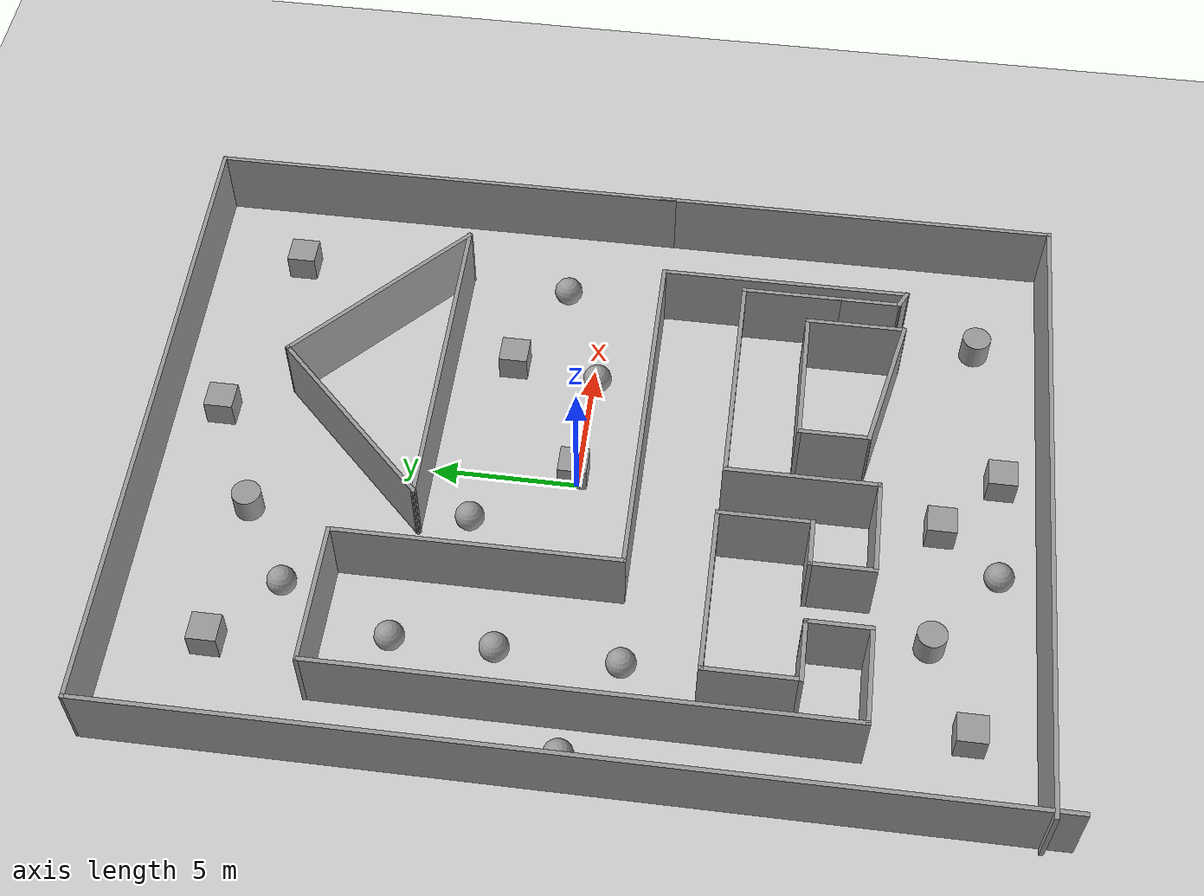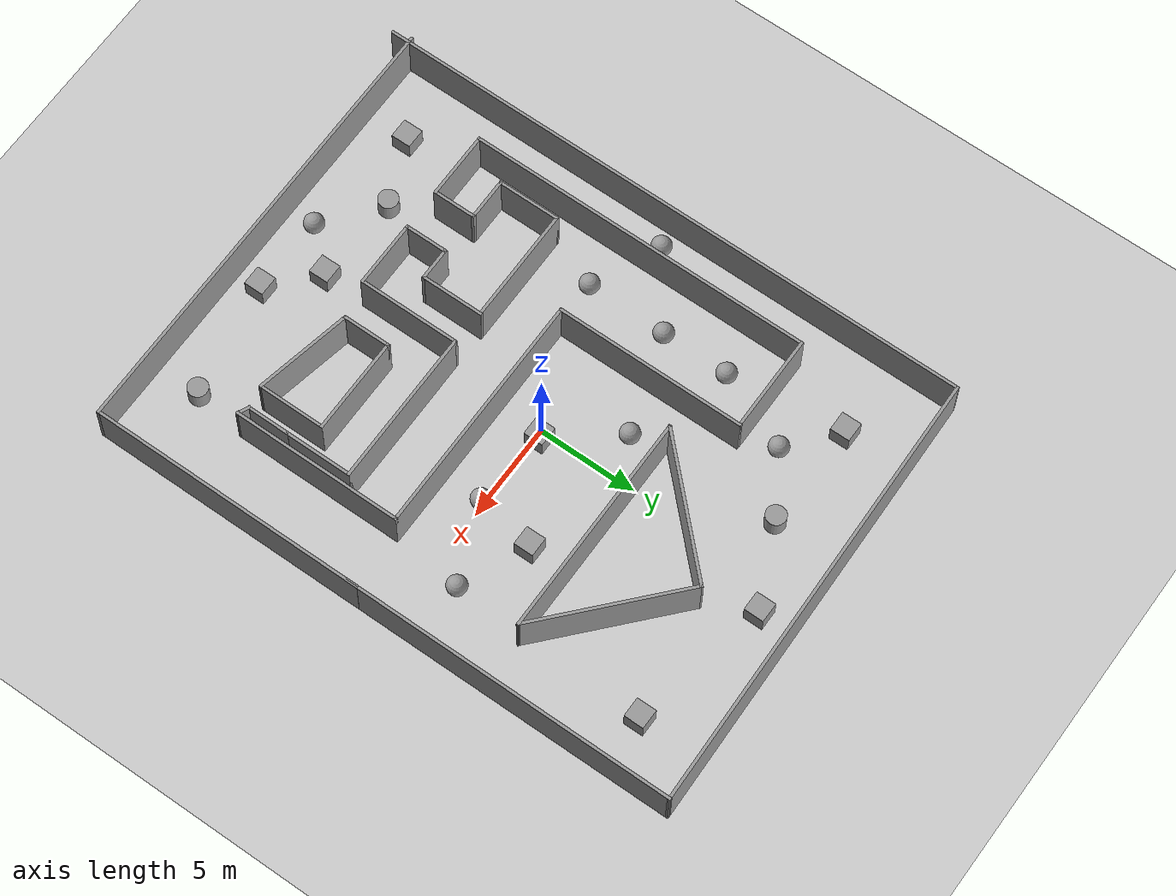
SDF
<sdf version="1.7">
 <world name="default">
  <light name="sun" type="directional">
   <pose>0 0 10 0 -0 0</pose>
   <diffuse>0.8 0.8 0.8 1</diffuse>
   <specular>0.2 0.2 0.2 1</specular>
   <attenuation>
    <range>1000</range>
    <constant>0.9</constant>
    <linear>0.01</linear>
    <quadratic>0.001</quadratic>
   </attenuation>
   <direction>-0.5 0.1 -0.9</direction>
   <spot><inner_angle>0</inner_angle><outer_angle>0</outer_angle><falloff>0</falloff></spot>
  </light>
  <model name="ground_plane">
   <static>1</static>
   <link name="link">
    <collision name="collision">
     <geometry><plane><normal>0 0 1</normal><size>100 100</size></plane></geometry>
     <surface><friction><ode><mu>100</mu><mu2>50</mu2></ode></friction></surface>
    </collision>
    <visual name="visual">
     <cast_shadows>0</cast_shadows>
     <geometry><plane><normal>0 0 1</normal><size>100 100</size></plane></geometry>
     <material>
      <script><uri>file://media/materials/scripts/gazebo.material</uri><name>Gazebo/Grey</name></script>
     </material>
    </visual>
   </link>
  </model>
  <gravity>0 0 -9.8</gravity>
  <magnetic_field>6e-06 2.3e-05 -4.2e-05</magnetic_field>
  <atmosphere type="adiabatic"/>
  <physics type="ode">
   <max_step_size>0.001</max_step_size>
   <real_time_factor>1</real_time_factor>
   <real_time_update_rate>1000</real_time_update_rate>
  </physics>
  <scene><ambient>0.4 0.4 0.4 1</ambient><background>0.7 0.7 0.7 1</background><shadows>1</shadows></scene>
  <spherical_coordinates>
   <surface_model>EARTH_WGS84</surface_model>
   <latitude_deg>0</latitude_deg>
   <longitude_deg>0</longitude_deg>
   <elevation>0</elevation>
   <heading_deg>0</heading_deg>
  </spherical_coordinates>
  <model name="Untitled">
   <pose>-0.105181 -0.907331 0 0 -0 0</pose>
   <link name="Wall_10">
    <collision name="Wall_10_Collision">
     <geometry><box><size>2.25 0.15 2.5</size></box></geometry>
     <pose>0 0 1.25 0 -0 0</pose>
    </collision>
    <visual name="Wall_10_Visual">
     <pose>0 0 1.25 0 -0 0</pose>
     <geometry><box><size>2.25 0.15 2.5</size></box></geometry>
     <material>
      <script><uri>file://media/materials/scripts/gazebo.material</uri><name>Gazebo/Grey</name></script>
      <ambient>1 1 1 1</ambient>
     </material>
     <meta><layer>0</layer></meta>
    </visual>
    <pose>-5.80283 -8.13717 0 0 -0 1.5708</pose>
   </link>
   <link name="Wall_11">
    <collision name="Wall_11_Collision">
     <geometry><box><size>2.25 0.15 2.5</size></box></geometry>
     <pose>0 0 1.25 0 -0 0</pose>
    </collision>
    <visual name="Wall_11_Visual">
     <pose>0 0 1.25 0 -0 0</pose>
     <geometry><box><size>2.25 0.15 2.5</size></box></geometry>
     <material>
      <script><uri>file://media/materials/scripts/gazebo.material</uri><name>Gazebo/Grey</name></script>
      <ambient>1 1 1 1</ambient>
     </material>
     <meta><layer>0</layer></meta>
    </visual>
    <pose>-6.85283 -7.08717 0 0 -0 3.14159</pose>
   </link>
   <link name="Wall_12">
    <collision name="Wall_12_Collision">
     <geometry><box><size>3.25 0.15 2.5</size></box></geometry>
     <pose>0 0 1.25 0 -0 0</pose>
    </collision>
    <visual name="Wall_12_Visual">
     <pose>0 0 1.25 0 -0 0</pose>
     <geometry><box><size>3.25 0.15 2.5</size></box></geometry>
     <material>
      <script><uri>file://media/materials/scripts/gazebo.material</uri><name>Gazebo/Grey</name></script>
      <ambient>1 1 1 1</ambient>
     </material>
     <meta><layer>0</layer></meta>
    </visual>
    <pose>-7.90283 -5.53717 0 0 -0 1.5708</pose>
   </link>
   <link name="Wall_13">
    <collision name="Wall_13_Collision">
     <geometry><box><size>6 0.15 2.5</size></box></geometry>
     <pose>0 0 1.25 0 -0 0</pose>
    </collision>
    <visual name="Wall_13_Visual">
     <pose>0 0 1.25 0 -0 0</pose>
     <geometry><box><size>6 0.15 2.5</size></box></geometry>
     <material>
      <script><uri>file://media/materials/scripts/gazebo.material</uri><name>Gazebo/Grey</name></script>
      <ambient>1 1 1 1</ambient>
     </material>
     <meta><layer>0</layer></meta>
    </visual>
    <pose>-4.97783 -3.98717 0 0 -0 0</pose>
   </link>
   <link name="Wall_14">
    <collision name="Wall_14_Collision">
     <geometry><box><size>3.25 0.15 2.5</size></box></geometry>
     <pose>0 0 1.25 0 -0 0</pose>
    </collision>
    <visual name="Wall_14_Visual">
     <pose>0 0 1.25 0 -0 0</pose>
     <geometry><box><size>3.25 0.15 2.5</size></box></geometry>
     <material>
      <script><uri>file://media/materials/scripts/gazebo.material</uri><name>Gazebo/Grey</name></script>
      <ambient>1 1 1 1</ambient>
     </material>
     <meta><layer>0</layer></meta>
    </visual>
    <pose>-2.05283 -5.53717 0 0 -0 -1.5708</pose>
   </link>
   <link name="Wall_15">
    <collision name="Wall_15_Collision">
     <geometry><box><size>1.75 0.15 2.5</size></box></geometry>
     <pose>0 0 1.25 0 -0 0</pose>
    </collision>
    <visual name="Wall_15_Visual">
     <pose>0 0 1.25 0 -0 0</pose>
     <geometry><box><size>1.75 0.15 2.5</size></box></geometry>
     <material>
      <script><uri>file://media/materials/scripts/gazebo.material</uri><name>Gazebo/Grey</name></script>
      <ambient>1 1 1 1</ambient>
     </material>
     <meta><layer>0</layer></meta>
    </visual>
    <pose>-2.85283 -7.08717 0 0 -0 3.14159</pose>
   </link>
   <link name="Wall_16">
    <collision name="Wall_16_Collision">
     <geometry><box><size>2.25 0.15 2.5</size></box></geometry>
     <pose>0 0 1.25 0 -0 0</pose>
    </collision>
    <visual name="Wall_16_Visual">
     <pose>0 0 1.25 0 -0 0</pose>
     <geometry><box><size>2.25 0.15 2.5</size></box></geometry>
     <material>
      <script><uri>file://media/materials/scripts/gazebo.material</uri><name>Gazebo/Grey</name></script>
      <ambient>1 1 1 1</ambient>
     </material>
     <meta><layer>0</layer></meta>
    </visual>
    <pose>-3.65283 -8.13717 0 0 -0 -1.5708</pose>
   </link>
   <link name="Wall_17">
    <collision name="Wall_17_Collision">
     <geometry><box><size>3.5 0.15 2.5</size></box></geometry>
     <pose>0 0 1.25 0 -0 0</pose>
    </collision>
    <visual name="Wall_17_Visual">
     <pose>0 0 1.25 0 -0 0</pose>
     <geometry><box><size>3.5 0.15 2.5</size></box></geometry>
     <material>
      <script><uri>file://media/materials/scripts/gazebo.material</uri><name>Gazebo/Grey</name></script>
      <ambient>1 1 1 1</ambient>
     </material>
     <meta><layer>0</layer></meta>
    </visual>
    <pose>-1.97783 -9.18717 0 0 -0 0</pose>
   </link>
   <link name="Wall_18">
    <collision name="Wall_18_Collision">
     <geometry><box><size>5.25 0.15 2.5</size></box></geometry>
     <pose>0 0 1.25 0 -0 0</pose>
    </collision>
    <visual name="Wall_18_Visual">
     <pose>0 0 1.25 0 -0 0</pose>
     <geometry><box><size>5.25 0.15 2.5</size></box></geometry>
     <material>
      <script><uri>file://media/materials/scripts/gazebo.material</uri><name>Gazebo/Grey</name></script>
      <ambient>1 1 1 1</ambient>
     </material>
     <meta><layer>0</layer></meta>
    </visual>
    <pose>-0.30283 -6.63717 0 0 -0 1.5708</pose>
   </link>
   <link name="Wall_19">
    <collision name="Wall_19_Collision">
     <geometry><box><size>8 0.15 2.5</size></box></geometry>
     <pose>0 0 1.25 0 -0 0</pose>
    </collision>
    <visual name="Wall_19_Visual">
     <pose>0 0 1.25 0 -0 0</pose>
     <geometry><box><size>8 0.15 2.5</size></box></geometry>
     <material>
      <script><uri>file://media/materials/scripts/gazebo.material</uri><name>Gazebo/Grey</name></script>
      <ambient>1 1 1 1</ambient>
     </material>
     <meta><layer>0</layer></meta>
    </visual>
    <pose>3.62217 -4.08717 0 0 -0 0</pose>
   </link>
   <link name="Wall_20">
    <collision name="Wall_20_Collision">
     <geometry><box><size>3.5 0.15 2.5</size></box></geometry>
     <pose>0 0 1.25 0 -0 0</pose>
    </collision>
    <visual name="Wall_20_Visual">
     <pose>0 0 1.25 0 -0 0</pose>
     <geometry><box><size>3.5 0.15 2.5</size></box></geometry>
     <material>
      <script><uri>file://media/materials/scripts/gazebo.material</uri><name>Gazebo/Grey</name></script>
      <ambient>1 1 1 1</ambient>
     </material>
     <meta><layer>0</layer></meta>
    </visual>
    <pose>7.54717 -5.76217 0 0 -0 -1.5708</pose>
   </link>
   <link name="Wall_21">
    <collision name="Wall_21_Collision">
     <geometry><box><size>2.25 0.15 2.5</size></box></geometry>
     <pose>0 0 1.25 0 -0 0</pose>
    </collision>
    <visual name="Wall_21_Visual">
     <pose>0 0 1.25 0 -0 0</pose>
     <geometry><box><size>2.25 0.15 2.5</size></box></geometry>
     <material>
      <script><uri>file://media/materials/scripts/gazebo.material</uri><name>Gazebo/Grey</name></script>
      <ambient>1 1 1 1</ambient>
     </material>
     <meta><layer>0</layer></meta>
    </visual>
    <pose>7.54717 -8.48717 0 0 -0 -1.5708</pose>
   </link>
   <link name="Wall_23">
    <collision name="Wall_23_Collision">
     <geometry><box><size>2.5 0.15 2.5</size></box></geometry>
     <pose>0 0 1.25 0 -0 0</pose>
    </collision>
    <visual name="Wall_23_Visual">
     <pose>0 0 1.25 0 -0 0</pose>
     <geometry><box><size>2.5 0.15 2.5</size></box></geometry>
     <material>
      <script><uri>file://media/materials/scripts/gazebo.material</uri><name>Gazebo/Grey</name></script>
      <ambient>1 1 1 1</ambient>
     </material>
     <meta><layer>0</layer></meta>
    </visual>
    <pose>1.57326 -7.57612 0 0 -0 1.5708</pose>
   </link>
   <link name="Wall_24">
    <collision name="Wall_24_Collision">
     <geometry><box><size>5 0.15 2.5</size></box></geometry>
     <pose>0 0 1.25 0 -0 0</pose>
    </collision>
    <visual name="Wall_24_Visual">
     <pose>0 0 1.25 0 -0 0</pose>
     <geometry><box><size>5 0.15 2.5</size></box></geometry>
     <material>
      <script><uri>file://media/materials/scripts/gazebo.material</uri><name>Gazebo/Grey</name></script>
      <ambient>1 1 1 1</ambient>
     </material>
     <meta><layer>0</layer></meta>
    </visual>
    <pose>3.99825 -6.40112 0 0 -0 0</pose>
   </link>
   <link name="Wall_25">
    <collision name="Wall_25_Collision">
     <geometry><box><size>3.5 0.15 2.5</size></box></geometry>
     <pose>0 0 1.25 0 -0 0</pose>
    </collision>
    <visual name="Wall_25_Visual">
     <pose>0 0 1.25 0 -0 0</pose>
     <geometry><box><size>3.5 0.15 2.5</size></box></geometry>
     <material>
      <script><uri>file://media/materials/scripts/gazebo.material</uri><name>Gazebo/Grey</name></script>
      <ambient>1 1 1 1</ambient>
     </material>
     <meta><layer>0</layer></meta>
    </visual>
    <pose>6.42326 -8.07612 0 0 -0 -1.5708</pose>
   </link>
   <link name="Wall_26">
    <collision name="Wall_26_Collision">
     <geometry><box><size>5.10202 0.15 2.5</size></box></geometry>
     <pose>0 0 1.25 0 -0 0</pose>
    </collision>
    <visual name="Wall_26_Visual">
     <pose>0 0 1.25 0 -0 0</pose>
     <geometry><box><size>5.10202 0.15 2.5</size></box></geometry>
     <material>
      <script><uri>file://media/materials/scripts/gazebo.material</uri><name>Gazebo/Grey</name></script>
      <ambient>1 1 1 1</ambient>
     </material>
     <meta><layer>0</layer></meta>
    </visual>
    <pose>3.99825 -9.25112 0 0 -0 2.93826</pose>
   </link>
   <link name="Wall_28">
    <collision name="Wall_28_Collision">
     <geometry><box><size>5 0.15 2.5</size></box></geometry>
     <pose>0 0 1.25 0 -0 0</pose>
    </collision>
    <visual name="Wall_28_Visual">
     <pose>0 0 1.25 0 -0 0</pose>
     <geometry><box><size>5 0.15 2.5</size></box></geometry>
     <material>
      <script><uri>file://media/materials/scripts/gazebo.material</uri><name>Gazebo/Grey</name></script>
      <ambient>1 1 1 1</ambient>
     </material>
     <meta><layer>0</layer></meta>
    </visual>
    <pose>-6.72783 8.41283 0 0 -0 0</pose>
   </link>
   <link name="Wall_29">
    <collision name="Wall_29_Collision">
     <geometry><box><size>9.75 0.15 2.5</size></box></geometry>
     <pose>0 0 1.25 0 -0 0</pose>
    </collision>
    <visual name="Wall_29_Visual">
     <pose>0 0 1.25 0 -0 0</pose>
     <geometry><box><size>9.75 0.15 2.5</size></box></geometry>
     <material>
      <script><uri>file://media/materials/scripts/gazebo.material</uri><name>Gazebo/Grey</name></script>
      <ambient>1 1 1 1</ambient>
     </material>
     <meta><layer>0</layer></meta>
    </visual>
    <pose>-4.30283 3.61283 0 0 -0 -1.5708</pose>
   </link>
   <link name="Wall_31">
    <collision name="Wall_31_Collision">
     <geometry><box><size>17 0.15 2.5</size></box></geometry>
     <pose>0 0 1.25 0 -0 0</pose>
    </collision>
    <visual name="Wall_31_Visual">
     <pose>0 0 1.25 0 -0 0</pose>
     <geometry><box><size>17 0.15 2.5</size></box></geometry>
     <material>
      <script><uri>file://media/materials/scripts/gazebo.material</uri><name>Gazebo/Grey</name></script>
      <ambient>1 1 1 1</ambient>
     </material>
     <meta><layer>0</layer></meta>
    </visual>
    <pose>11.5472 7.23783 0 0 -0 1.5708</pose>
   </link>
   <link name="Wall_32">
    <collision name="Wall_32_Collision">
     <geometry><box><size>23.0456 0.15 2.5</size></box></geometry>
     <pose>0 0 1.25 0 -0 0</pose>
    </collision>
    <visual name="Wall_32_Visual">
     <pose>0 0 1.25 0 -0 0</pose>
     <geometry><box><size>23.0456 0.15 2.5</size></box></geometry>
     <material>
      <script><uri>file://media/materials/scripts/gazebo.material</uri><name>Gazebo/Grey</name></script>
      <ambient>1 1 1 1</ambient>
     </material>
     <meta><layer>0</layer></meta>
    </visual>
    <pose>0.101867 15.4242 0 0 -0 -3.12075</pose>
   </link>
   <link name="Wall_34">
    <collision name="Wall_34_Collision">
     <geometry><box><size>12.5 0.15 2.5</size></box></geometry>
     <pose>0 0 1.25 0 -0 0</pose>
    </collision>
    <visual name="Wall_34_Visual">
     <pose>0 0 1.25 0 -0 0</pose>
     <geometry><box><size>12.5 0.15 2.5</size></box></geometry>
     <material>
      <script><uri>file://media/materials/scripts/gazebo.material</uri><name>Gazebo/Grey</name></script>
      <ambient>1 1 1 1</ambient>
     </material>
     <meta><layer>0</layer></meta>
    </visual>
    <pose>1.87217 -1.18717 0 0 -0 0</pose>
   </link>
   <link name="Wall_35">
    <collision name="Wall_35_Collision">
     <geometry><box><size>8.75 0.15 2.5</size></box></geometry>
     <pose>0 0 1.25 0 -0 0</pose>
    </collision>
    <visual name="Wall_35_Visual">
     <pose>0 0 1.25 0 -0 0</pose>
     <geometry><box><size>8.75 0.15 2.5</size></box></geometry>
     <material>
      <script><uri>file://media/materials/scripts/gazebo.material</uri><name>Gazebo/Grey</name></script>
      <ambient>1 1 1 1</ambient>
     </material>
     <meta><layer>0</layer></meta>
    </visual>
    <pose>8.04717 -5.48717 0 0 -0 -1.5708</pose>
   </link>
   <link name="Wall_36">
    <collision name="Wall_36_Collision">
     <geometry><box><size>0.709017 0.15 2.5</size></box></geometry>
     <pose>0 0 1.25 0 -0 0</pose>
    </collision>
    <visual name="Wall_36_Visual">
     <pose>0 0 1.25 0 -0 0</pose>
     <geometry><box><size>0.709017 0.15 2.5</size></box></geometry>
     <material>
      <script><uri>file://media/materials/scripts/gazebo.material</uri><name>Gazebo/Grey</name></script>
      <ambient>1 1 1 1</ambient>
     </material>
     <meta><layer>0</layer></meta>
    </visual>
    <pose>7.79717 -9.66217 0 0 -0 2.67794</pose>
   </link>
   <link name="Wall_38">
    <collision name="Wall_38_Collision">
     <geometry><box><size>14.25 0.15 2.5</size></box></geometry>
     <pose>0 0 1.25 0 -0 0</pose>
    </collision>
    <visual name="Wall_38_Visual">
     <pose>0 0 1.25 0 -0 0</pose>
     <geometry><box><size>14.25 0.15 2.5</size></box></geometry>
     <material>
      <script><uri>file://media/materials/scripts/gazebo.material</uri><name>Gazebo/Grey</name></script>
      <ambient>1 1 1 1</ambient>
     </material>
     <meta><layer>0</layer></meta>
    </visual>
    <pose>11.55 -7.73482 0 0 -0 -1.5708</pose>
   </link>
   <link name="Wall_39">
    <collision name="Wall_39_Collision">
     <geometry><box><size>23.25 0.15 2.5</size></box></geometry>
     <pose>0 0 1.25 0 -0 0</pose>
    </collision>
    <visual name="Wall_39_Visual">
     <pose>0 0 1.25 0 -0 0</pose>
     <geometry><box><size>23.25 0.15 2.5</size></box></geometry>
     <material>
      <script><uri>file://media/materials/scripts/gazebo.material</uri><name>Gazebo/Grey</name></script>
      <ambient>1 1 1 1</ambient>
     </material>
     <meta><layer>0</layer></meta>
    </visual>
    <pose>-0 -14.7848 0 0 -0 3.14159</pose>
   </link>
   <link name="Wall_4">
    <collision name="Wall_4_Collision">
     <geometry><box><size>31 0.15 2.5</size></box></geometry>
     <pose>0 0 1.25 0 -0 0</pose>
    </collision>
    <visual name="Wall_4_Visual">
     <pose>0 0 1.25 0 -0 0</pose>
     <geometry><box><size>31 0.15 2.5</size></box></geometry>
     <material>
      <script><uri>file://media/materials/scripts/gazebo.material</uri><name>Gazebo/Grey</name></script>
      <ambient>1 1 1 1</ambient>
     </material>
     <meta><layer>0</layer></meta>
    </visual>
    <pose>-11.3434 -0.239372 0 0 -0 1.5708</pose>
   </link>
   <link name="Wall_41">
    <collision name="Wall_41_Collision">
     <geometry><box><size>7.75 0.15 2.5</size></box></geometry>
     <pose>0 0 1.25 0 -0 0</pose>
    </collision>
    <visual name="Wall_41_Visual">
     <pose>0 0 1.25 0 -0 0</pose>
     <geometry><box><size>7.75 0.15 2.5</size></box></geometry>
     <material>
      <script><uri>file://media/materials/scripts/gazebo.material</uri><name>Gazebo/Grey</name></script>
      <ambient>1 1 1 1</ambient>
     </material>
     <meta><layer>0</layer></meta>
    </visual>
    <pose>0.230633 8.65688 0 0 -0 -2.35619</pose>
   </link>
   <link name="Wall_42">
    <collision name="Wall_42_Collision">
     <geometry><box><size>11.5 0.15 2.5</size></box></geometry>
     <pose>0 0 1.25 0 -0 0</pose>
    </collision>
    <visual name="Wall_42_Visual">
     <pose>0 0 1.25 0 -0 0</pose>
     <geometry><box><size>11.5 0.15 2.5</size></box></geometry>
     <material>
      <script><uri>file://media/materials/scripts/gazebo.material</uri><name>Gazebo/Grey</name></script>
      <ambient>1 1 1 1</ambient>
     </material>
     <meta><layer>0</layer></meta>
    </visual>
    <pose>3.21863 5.96987 0 0 -0 0</pose>
   </link>
   <link name="Wall_43">
    <collision name="Wall_43_Collision">
     <geometry><box><size>8.18694 0.15 2.5</size></box></geometry>
     <pose>0 0 1.25 0 -0 0</pose>
    </collision>
    <visual name="Wall_43_Visual">
     <pose>0 0 1.25 0 -0 0</pose>
     <geometry><box><size>8.18694 0.15 2.5</size></box></geometry>
     <material>
      <script><uri>file://media/materials/scripts/gazebo.material</uri><name>Gazebo/Grey</name></script>
      <ambient>1 1 1 1</ambient>
     </material>
     <meta><layer>0</layer></meta>
    </visual>
    <pose>5.90563 8.65688 0 0 -0 2.40918</pose>
   </link>
   <link name="Wall_8">
    <collision name="Wall_8_Collision">
     <geometry><box><size>17.75 0.15 2.5</size></box></geometry>
     <pose>0 0 1.25 0 -0 0</pose>
    </collision>
    <visual name="Wall_8_Visual">
     <pose>0 0 1.25 0 -0 0</pose>
     <geometry><box><size>17.75 0.15 2.5</size></box></geometry>
     <material>
      <script><uri>file://media/materials/scripts/gazebo.material</uri><name>Gazebo/Grey</name></script>
      <ambient>1 1 1 1</ambient>
     </material>
     <meta><layer>0</layer></meta>
    </visual>
    <pose>-9.15283 -0.387174 0 0 -0 -1.5708</pose>
   </link>
   <link name="Wall_9">
    <collision name="Wall_9_Collision">
     <geometry><box><size>3.5 0.15 2.5</size></box></geometry>
     <pose>0 0 1.25 0 -0 0</pose>
    </collision>
    <visual name="Wall_9_Visual">
     <pose>0 0 1.25 0 -0 0</pose>
     <geometry><box><size>3.5 0.15 2.5</size></box></geometry>
     <material>
      <script><uri>file://media/materials/scripts/gazebo.material</uri><name>Gazebo/Grey</name></script>
      <ambient>1 1 1 1</ambient>
     </material>
     <meta><layer>0</layer></meta>
    </visual>
    <pose>-7.47783 -9.18717 0 0 -0 0</pose>
   </link>
   <static>1</static>
  </model>
  <model name="unit_box">
   <pose>-7.65724 11.0557 0.499995 -1e-05 -0 -0</pose>
   <link name="link">
    <inertial>
     <mass>1</mass>
     <inertia>
      <ixx>0.166667</ixx>
      <ixy>0</ixy>
      <ixz>0</ixz>
      <iyy>0.166667</iyy>
      <iyz>0</iyz>
      <izz>0.166667</izz>
     </inertia>
    </inertial>
    <collision name="collision"><geometry><box><size>1 1 1</size></box></geometry></collision>
    <visual name="visual">
     <geometry><box><size>1 1 1</size></box></geometry>
     <material>
      <script><name>Gazebo/Grey</name><uri>file://media/materials/scripts/gazebo.material</uri></script>
     </material>
    </visual>
   </link>
  </model>
  <model name="unit_box_0">
   <pose>8.61022 11.3329 0.499995 0 1e-05 0</pose>
   <link name="link">
    <inertial>
     <mass>1</mass>
     <inertia>
      <ixx>0.166667</ixx>
      <ixy>0</ixy>
      <ixz>0</ixz>
      <iyy>0.166667</iyy>
      <iyz>0</iyz>
      <izz>0.166667</izz>
     </inertia>
    </inertial>
    <collision name="collision"><geometry><box><size>1 1 1</size></box></geometry></collision>
    <visual name="visual">
     <geometry><box><size>1 1 1</size></box></geometry>
     <material>
      <script><name>Gazebo/Grey</name><uri>file://media/materials/scripts/gazebo.material</uri></script>
     </material>
    </visual>
   </link>
  </model>
  <model name="unit_box_1">
   <pose>4.92107 2.8819 0.499995 -1e-05 -0 -0</pose>
   <link name="link">
    <inertial>
     <mass>1</mass>
     <inertia>
      <ixx>0.166667</ixx>
      <ixy>0</ixy>
      <ixz>0</ixz>
      <iyy>0.166667</iyy>
      <iyz>0</iyz>
      <izz>0.166667</izz>
     </inertia>
    </inertial>
    <collision name="collision"><geometry><box><size>1 1 1</size></box></geometry></collision>
    <visual name="visual">
     <geometry><box><size>1 1 1</size></box></geometry>
     <material>
      <script><name>Gazebo/Grey</name><uri>file://media/materials/scripts/gazebo.material</uri></script>
     </material>
    </visual>
   </link>
  </model>
  <model name="unit_box_2">
   <pose>0.401198 0.171449 0.499995 0 1e-05 0</pose>
   <link name="link">
    <inertial>
     <mass>1</mass>
     <inertia>
      <ixx>0.166667</ixx>
      <ixy>0</ixy>
      <ixz>0</ixz>
      <iyy>0.166667</iyy>
      <iyz>0</iyz>
      <izz>0.166667</izz>
     </inertia>
    </inertial>
    <collision name="collision"><geometry><box><size>1 1 1</size></box></geometry></collision>
    <visual name="visual">
     <geometry><box><size>1 1 1</size></box></geometry>
     <material>
      <script><name>Gazebo/Grey</name><uri>file://media/materials/scripts/gazebo.material</uri></script>
     </material>
    </visual>
   </link>
  </model>
  <model name="unit_sphere">
   <pose>-6.94111 1.76991 0.5 0 -0 0</pose>
   <link name="link">
    <inertial>
     <mass>1</mass>
     <inertia><ixx>0.1</ixx><ixy>0</ixy><ixz>0</ixz><iyy>0.1</iyy><iyz>0</iyz><izz>0.1</izz></inertia>
    </inertial>
    <collision name="collision"><geometry><sphere><radius>0.5</radius></sphere></geometry></collision>
    <visual name="visual">
     <geometry><sphere><radius>0.5</radius></sphere></geometry>
     <material>
      <script><name>Gazebo/Grey</name><uri>file://media/materials/scripts/gazebo.material</uri></script>
     </material>
    </visual>
   </link>
  </model>
  <model name="unit_sphere_0">
   <pose>-6.94697 5.19076 0.5 0 -0 0</pose>
   <link name="link">
    <inertial>
     <mass>1</mass>
     <inertia><ixx>0.1</ixx><ixy>0</ixy><ixz>0</ixz><iyy>0.1</iyy><iyz>0</iyz><izz>0.1</izz></inertia>
    </inertial>
    <collision name="collision"><geometry><sphere><radius>0.5</radius></sphere></geometry></collision>
    <visual name="visual">
     <geometry><sphere><radius>0.5</radius></sphere></geometry>
     <material>
      <script><name>Gazebo/Grey</name><uri>file://media/materials/scripts/gazebo.material</uri></script>
     </material>
    </visual>
   </link>
  </model>
  <model name="unit_sphere_1">
   <pose>-7.0031 -2.34158 0.5 0 -0 0</pose>
   <link name="link">
    <inertial>
     <mass>1</mass>
     <inertia><ixx>0.1</ixx><ixy>0</ixy><ixz>0</ixz><iyy>0.1</iyy><iyz>0</iyz><izz>0.1</izz></inertia>
    </inertial>
    <collision name="collision"><geometry><sphere><radius>0.5</radius></sphere></geometry></collision>
    <visual name="visual">
     <geometry><sphere><radius>0.5</radius></sphere></geometry>
     <material>
      <script><name>Gazebo/Grey</name><uri>file://media/materials/scripts/gazebo.material</uri></script>
     </material>
    </visual>
   </link>
  </model>
  <model name="unit_box_3">
   <pose>-8.19782 -13.4509 0.499995 0 1e-05 0</pose>
   <link name="link">
    <inertial>
     <mass>1</mass>
     <inertia>
      <ixx>0.166667</ixx>
      <ixy>0</ixy>
      <ixz>0</ixz>
      <iyy>0.166667</iyy>
      <iyz>0</iyz>
      <izz>0.166667</izz>
     </inertia>
    </inertial>
    <collision name="collision"><geometry><box><size>1 1 1</size></box></geometry></collision>
    <visual name="visual">
     <geometry><box><size>1 1 1</size></box></geometry>
     <material>
      <script><name>Gazebo/Grey</name><uri>file://media/materials/scripts/gazebo.material</uri></script>
     </material>
    </visual>
   </link>
  </model>
  <model name="unit_cylinder">
   <pose>-4.97554 -12.1323 0.499998 3e-06 -3e-06 0</pose>
   <link name="link">
    <inertial>
     <mass>1</mass>
     <inertia><ixx>0.145833</ixx><ixy>0</ixy><ixz>0</ixz><iyy>0.145833</iyy><iyz>0</iyz><izz>0.125</izz></inertia>
    </inertial>
    <collision name="collision">
     <geometry><cylinder><radius>0.5</radius><length>1</length></cylinder></geometry>
    </collision>
    <visual name="visual">
     <geometry><cylinder><radius>0.5</radius><length>1</length></cylinder></geometry>
     <material>
      <script><name>Gazebo/Grey</name><uri>file://media/materials/scripts/gazebo.material</uri></script>
     </material>
    </visual>
   </link>
  </model>
  <model name="unit_sphere_2">
   <pose>-2.2173 -14.3077 0.5 0 -0 0</pose>
   <link name="link">
    <inertial>
     <mass>1</mass>
     <inertia><ixx>0.1</ixx><ixy>0</ixy><ixz>0</ixz><iyy>0.1</iyy><iyz>0</iyz><izz>0.1</izz></inertia>
    </inertial>
    <collision name="collision"><geometry><sphere><radius>0.5</radius></sphere></geometry></collision>
    <visual name="visual">
     <geometry><sphere><radius>0.5</radius></sphere></geometry>
     <material>
      <script><name>Gazebo/Grey</name><uri>file://media/materials/scripts/gazebo.material</uri></script>
     </material>
    </visual>
   </link>
  </model>
  <model name="unit_box_4">
   <pose>-0.462472 -12.3515 0.499995 -1e-05 -0 -0</pose>
   <link name="link">
    <inertial>
     <mass>1</mass>
     <inertia>
      <ixx>0.166667</ixx>
      <ixy>0</ixy>
      <ixz>0</ixz>
      <iyy>0.166667</iyy>
      <iyz>0</iyz>
      <izz>0.166667</izz>
     </inertia>
    </inertial>
    <collision name="collision"><geometry><box><size>1 1 1</size></box></geometry></collision>
    <visual name="visual">
     <geometry><box><size>1 1 1</size></box></geometry>
     <material>
      <script><name>Gazebo/Grey</name><uri>file://media/materials/scripts/gazebo.material</uri></script>
     </material>
    </visual>
   </link>
  </model>
  <model name="unit_box_5">
   <pose>1.71294 -14.3555 0.499995 0 1e-05 0</pose>
   <link name="link">
    <inertial>
     <mass>1</mass>
     <inertia>
      <ixx>0.166667</ixx>
      <ixy>0</ixy>
      <ixz>0</ixz>
      <iyy>0.166667</iyy>
      <iyz>0</iyz>
      <izz>0.166667</izz>
     </inertia>
    </inertial>
    <collision name="collision"><geometry><box><size>1 1 1</size></box></geometry></collision>
    <visual name="visual">
     <geometry><box><size>1 1 1</size></box></geometry>
     <material>
      <script><name>Gazebo/Grey</name><uri>file://media/materials/scripts/gazebo.material</uri></script>
     </material>
    </visual>
   </link>
  </model>
  <model name="unit_cylinder_0">
   <pose>7.51686 -13.3977 0.499992 -3e-06 4e-06 0</pose>
   <link name="link">
    <inertial>
     <mass>1</mass>
     <inertia><ixx>0.145833</ixx><ixy>0</ixy><ixz>0</ixz><iyy>0.145833</iyy><iyz>0</iyz><izz>0.125</izz></inertia>
    </inertial>
    <collision name="collision">
     <geometry><cylinder><radius>0.5</radius><length>1</length></cylinder></geometry>
    </collision>
    <visual name="visual">
     <geometry><cylinder><radius>0.5</radius><length>1</length></cylinder></geometry>
     <material>
      <script><name>Gazebo/Grey</name><uri>file://media/materials/scripts/gazebo.material</uri></script>
     </material>
    </visual>
   </link>
  </model>
  <model name="unit_sphere_3">
   <pose>4.3682 -0.14738 0.5 0 -0 0</pose>
   <link name="link">
    <inertial>
     <mass>1</mass>
     <inertia><ixx>0.1</ixx><ixy>0</ixy><ixz>0</ixz><iyy>0.1</iyy><iyz>0</iyz><izz>0.1</izz></inertia>
    </inertial>
    <collision name="collision"><geometry><sphere><radius>0.5</radius></sphere></geometry></collision>
    <visual name="visual">
     <geometry><sphere><radius>0.5</radius></sphere></geometry>
     <material>
      <script><name>Gazebo/Grey</name><uri>file://media/materials/scripts/gazebo.material</uri></script>
     </material>
    </visual>
   </link>
  </model>
  <model name="unit_sphere_4">
   <pose>-2.01313 3.37571 0.5 0 -0 0</pose>
   <link name="link">
    <inertial>
     <mass>1</mass>
     <inertia><ixx>0.1</ixx><ixy>0</ixy><ixz>0</ixz><iyy>0.1</iyy><iyz>0</iyz><izz>0.1</izz></inertia>
    </inertial>
    <collision name="collision"><geometry><sphere><radius>0.5</radius></sphere></geometry></collision>
    <visual name="visual">
     <geometry><sphere><radius>0.5</radius></sphere></geometry>
     <material>
      <script><name>Gazebo/Grey</name><uri>file://media/materials/scripts/gazebo.material</uri></script>
     </material>
    </visual>
   </link>
  </model>
  <model name="unit_sphere_5">
   <pose>8.29135 1.40212 0.5 0 -0 0</pose>
   <link name="link">
    <inertial>
     <mass>1</mass>
     <inertia><ixx>0.1</ixx><ixy>0</ixy><ixz>0</ixz><iyy>0.1</iyy><iyz>0</iyz><izz>0.1</izz></inertia>
    </inertial>
    <collision name="collision"><geometry><sphere><radius>0.5</radius></sphere></geometry></collision>
    <visual name="visual">
     <geometry><sphere><radius>0.5</radius></sphere></geometry>
     <material>
      <script><name>Gazebo/Grey</name><uri>file://media/materials/scripts/gazebo.material</uri></script>
     </material>
    </visual>
   </link>
  </model>
  <model name="unit_sphere_6">
   <pose>-10.469 -0.792861 0.5 0 -0 0</pose>
   <link name="link">
    <inertial>
     <mass>1</mass>
     <inertia><ixx>0.1</ixx><ixy>0</ixy><ixz>0</ixz><iyy>0.1</iyy><iyz>0</iyz><izz>0.1</izz></inertia>
    </inertial>
    <collision name="collision"><geometry><sphere><radius>0.5</radius></sphere></geometry></collision>
    <visual name="visual">
     <geometry><sphere><radius>0.5</radius></sphere></geometry>
     <material>
      <script><name>Gazebo/Grey</name><uri>file://media/materials/scripts/gazebo.material</uri></script>
     </material>
    </visual>
   </link>
  </model>
  <model name="unit_cylinder_1">
   <pose>-2.34974 10.9242 0.499997 3e-06 4e-06 -0</pose>
   <link name="link">
    <inertial>
     <mass>1</mass>
     <inertia><ixx>0.145833</ixx><ixy>0</ixy><ixz>0</ixz><iyy>0.145833</iyy><iyz>0</iyz><izz>0.125</izz></inertia>
    </inertial>
    <collision name="collision">
     <geometry><cylinder><radius>0.5</radius><length>1</length></cylinder></geometry>
    </collision>
    <visual name="visual">
     <geometry><cylinder><radius>0.5</radius><length>1</length></cylinder></geometry>
     <material>
      <script><name>Gazebo/Grey</name><uri>file://media/materials/scripts/gazebo.material</uri></script>
     </material>
    </visual>
   </link>
  </model>
  <model name="unit_sphere_7">
   <pose>-5.32674 9.09332 0.5 0 -0 0</pose>
   <link name="link">
    <inertial>
     <mass>1</mass>
     <inertia><ixx>0.1</ixx><ixy>0</ixy><ixz>0</ixz><iyy>0.1</iyy><iyz>0</iyz><izz>0.1</izz></inertia>
    </inertial>
    <collision name="collision"><geometry><sphere><radius>0.5</radius></sphere></geometry></collision>
    <visual name="visual">
     <geometry><sphere><radius>0.5</radius></sphere></geometry>
     <material>
      <script><name>Gazebo/Grey</name><uri>file://media/materials/scripts/gazebo.material</uri></script>
     </material>
    </visual>
   </link>
  </model>
  <model name="unit_box_6">
   <pose>1.60724 12.7578 0.5 0 -0 0</pose>
   <link name="link">
    <inertial>
     <mass>1</mass>
     <inertia>
      <ixx>0.166667</ixx>
      <ixy>0</ixy>
      <ixz>0</ixz>
      <iyy>0.166667</iyy>
      <iyz>0</iyz>
      <izz>0.166667</izz>
     </inertia>
    </inertial>
    <collision name="collision"><geometry><box><size>1 1 1</size></box></geometry></collision>
    <visual name="visual">
     <geometry><box><size>1 1 1</size></box></geometry>
     <material>
      <script><name>Gazebo/Grey</name><uri>file://media/materials/scripts/gazebo.material</uri></script>
     </material>
    </visual>
   </link>
  </model>
 </world>
</sdf>
